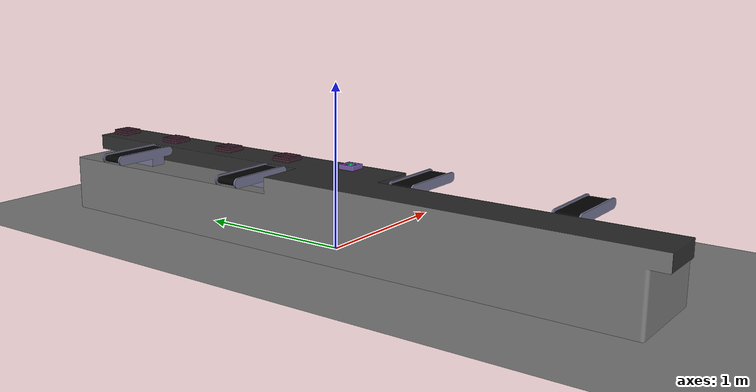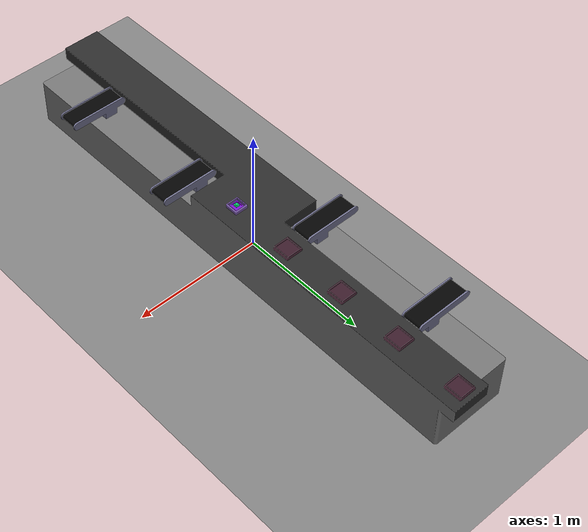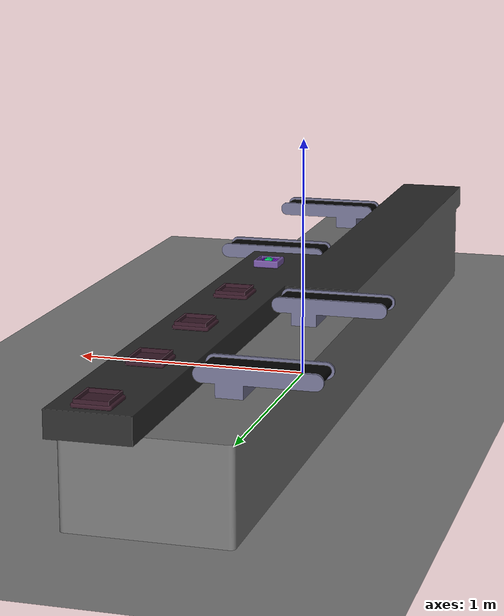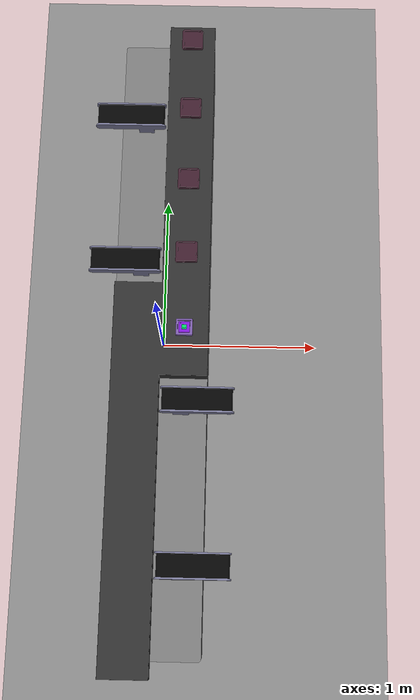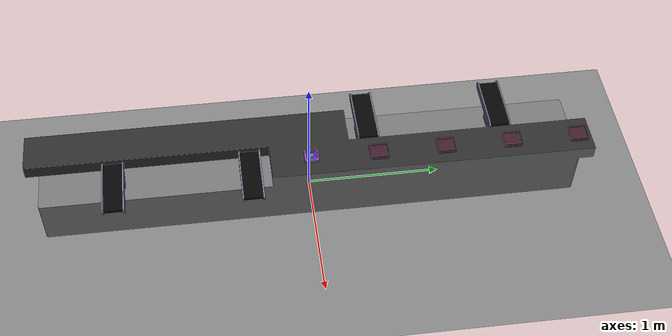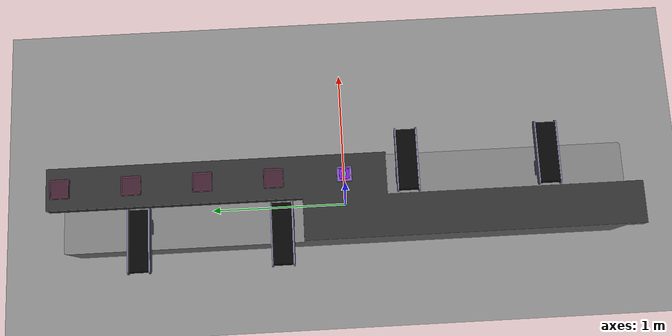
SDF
<?xml version="1.0" ?>
<!-- |    This document was autogenerated by xacro from /home/hao/vaccam_platform_ws/src/nova_gazebo/worlds/my_world.sdf.xacro | -->
<!-- |    EDITING THIS FILE BY HAND IS NOT RECOMMENDED                                 | -->
<sdf version="1.7">
  <world name="empty_world">
    <physics name='1ms' type='ignored'>
      <max_step_size>0.001</max_step_size>
      <real_time_factor>1</real_time_factor>
      <real_time_update_rate>1000</real_time_update_rate>
    </physics>
    <plugin name='gz::sim::systems::Physics' filename='gz-sim-physics-system'/>
    <plugin name='gz::sim::systems::UserCommands' filename='gz-sim-user-commands-system'/>
    <plugin name='gz::sim::systems::SceneBroadcaster' filename='gz-sim-scene-broadcaster-system'/>
    <plugin
      filename="gz-sim-velocity-control-system"
      name="gz::sim::systems::VelocityControl">
    </plugin>
    <!-- physics & atmosphere -->
    <gravity>0 0 -9.81</gravity>
    <!-- lighting -->
    <light name="sun" type="directional">
      <pose>0 0 10 0 0 0</pose>
      <diffuse>1 1 1 1</diffuse>
      <specular>0.1 0.1 0.1 1</specular>
      <attenuation>
        <range>1000</range>
        <constant>0.9</constant>
        <linear>0.01</linear>
        <quadratic>0.001</quadratic>
      </attenuation>
      <direction>0.0 0.0 -1</direction>
      <cast_shadows>true</cast_shadows>
    </light>
    <!-- simple ground plane -->
    <model name="ground_plane">
      <static>true</static>
      <link name="link">
        <collision name="collision">
          <geometry>
            <plane>
              <normal>0 0 1</normal>
              <size>10 10</size>
            </plane>
          </geometry>
        </collision>
        <visual name="visual">
          <geometry>
            <plane>
              <normal>0 0 1</normal>
              <size>10 10</size>
            </plane>
          </geometry>
          <material>
            <ambient>0.5 0.8 0.8 1</ambient>
            <diffuse>0.5 0.5 0.5 1</diffuse>
          </material>
        </visual>
      </link>
    </model>
    <include>
      <name>container_l</name>
      <uri>model://container_l</uri>
      <pose>0.15 0 0.45999999999999996 0 0 0</pose>
      <static>False</static>
    </include>
    <!-- ======= World Definition ======= -->
    <include>
      <name>container_m</name>
      <uri>model://container_m</uri>
      <pose>0.15 0 0.47 0 0 0</pose>
      <static>False</static>
    </include>
    <!-- ======= World Definition ======= -->
    <include>
      <name>object</name>
      <uri>model://object</uri>
      <pose>0.15 0 0.48 0 0 0</pose>
      <static>False</static>
    </include>
    <!-- ======= World Definition ======= -->
    <include>
      <name>conveyor_1</name>
      <uri>model://conveyor</uri>
      <pose>-0.14 1.45 0.35 0 0 0.0</pose>
      <static>True</static>
    </include>
    <!-- ======= World Definition ======= -->
    <include>
      <name>conveyor_2</name>
      <uri>model://conveyor</uri>
      <pose>-0.14 0.45 0.35 0 0 0.0</pose>
      <static>True</static>
    </include>
    <!-- ======= World Definition ======= -->
    <include>
      <name>conveyor_3</name>
      <uri>model://conveyor</uri>
      <pose>0.14 -0.45 0.35 0 0 3.14</pose>
      <static>True</static>
    </include>
    <!-- ======= World Definition ======= -->
    <include>
      <name>conveyor_4</name>
      <uri>model://conveyor</uri>
      <pose>0.14 -1.45 0.35 0 0 3.14</pose>
      <static>True</static>
    </include>
    <!-- ======= World Definition ======= -->
    <include>
      <name>sliding_cube0</name>
      <uri>model://sliding_cube</uri>
      <pose>0.15 0.5 0.450000016 0 0 0</pose>
      <static>False</static>
    </include>

    <include>
      <name>sliding_cube1</name>
      <uri>model://sliding_cube</uri>
      <pose>0.15 1.0 0.4500000 0 0 0</pose>
      <static>False</static>
    </include>
    <include>
    <name>sliding_cube2</name>
      <uri>model://sliding_cube</uri>
      <pose>0.15 1.5 0.4500000 0 0 0</pose>
      <static>False</static>
    </include>
    <include>
      <name>sliding_cube3</name>
      <uri>model://sliding_cube</uri>
      <pose>0.15 2.0 0.4500000 0 0 0</pose>
      <static>False</static>
    </include>
    <!-- ======= World Definition ======= -->
    <include>
      <name>platform</name>
      <uri>model://platform</uri>
      <pose>0 -0.0 0.45 0 0 0</pose>
      <static>True</static>
    </include>
    <!-- ======= World Definition ======= -->
  </world>
</sdf>

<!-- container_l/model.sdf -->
<sdf version="1.6">
  <model name="container_l">
    <static>false</static>

    <link name="link_container_l">
      <inertial>
        <mass>0.185</mass>
        <pose>0 0 0.011014 0 0 0</pose>
        <inertia>
          <ixx>2.24613e-4</ixx>
          <iyy>2.24613e-4</iyy>
          <izz>4.23503e-4</izz>
          <ixy>0</ixy>
          <ixz>0</ixz>
          <iyz>0</iyz>
        </inertia>
      </inertial>

      <collision name="collision">
        <geometry>
          <mesh>
            <uri>model://container_l/meshes/container_l.dae</uri>
          </mesh>
        </geometry>
      </collision>

      <visual name="visual">
        <geometry>
          <mesh>
            <uri>model://container_l/meshes/container_l.dae</uri>
          </mesh>
        </geometry>
      </visual>
    </link>
  </model>
</sdf>

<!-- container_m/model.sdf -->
<sdf version="1.6">
  <model name="container_m">
    <pose>0 0 1 0 0 0</pose>
    <static>false</static>

    <link name="link_container_m">
      <inertial>
        <mass>0.059</mass>
        <pose>0 0 0.006419 0 0 0</pose>
        <inertia>
          <ixx>2.6257e-5</ixx>
          <iyy>2.6257e-5</iyy>
          <izz>5.0783e-5</izz>
          <ixy>0.0</ixy>
          <ixz>0.0</ixz>
          <iyz>0.0</iyz>
        </inertia>
      </inertial>

      <!-- 注意尺寸单位已改为米 -->
      <collision name="collision">
        <geometry>
          <mesh>
            <uri>model://container_m/meshes/container_m.dae</uri>
          </mesh>
        </geometry>
      </collision>

      <visual name="visual">
        <geometry>
          <mesh>
            <uri>model://container_m/meshes/container_m.dae</uri>
          </mesh>
        </geometry>
      </visual>
    </link>
  </model>
</sdf>

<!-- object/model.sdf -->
<sdf version="1.6">
  <model name="object">
    <pose>0 0 1 0 0 0</pose>
    <static>false</static>

    <link name="link_object">
      <inertial>
        <mass>0.01</mass>
        <pose>0 0 0.006127 0 0 0</pose>
        <inertia>
          <ixx>7.95e-7</ixx>
          <iyy>7.95e-7</iyy>
          <izz>1.303e-6</izz>
          <ixy>0</ixy><ixz>0</ixz><iyz>0</iyz>
        </inertia>
      </inertial>

      <collision name="collision">
        <geometry>
          <mesh>
            <uri>model://object/meshes/object.dae</uri>
          </mesh>
        </geometry>
      </collision>

      <visual name="visual">
        <geometry>
          <mesh>
            <uri>model://object/meshes/object.dae</uri>
          </mesh>
        </geometry>
      </visual>
    </link>
  </model>
</sdf>

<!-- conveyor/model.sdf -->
<sdf version="1.6">
  <model name="conveyor">
    <static>true</static>
    <link name="link">
    <collision name="collision">
        <geometry>
          <mesh>
            <uri>model://conveyor/meshes/conveyor.dae</uri>
          </mesh>
        </geometry>
      </collision>
      <visual name="visual">
        <geometry>
          <mesh>
            <uri>model://conveyor/meshes/conveyor.dae</uri>
          </mesh>
        </geometry>
      </visual>
    </link>
  </model>
</sdf>

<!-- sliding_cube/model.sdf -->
<sdf version="1.6" xmlns:xacro="http://ros.org/wiki/xacro">

  <!-- 定义一个变量 name，默认值为 sliding_cube -->
  <xacro:property name="name" value="sliding_cube"/>

  <model name="${name}">
    <pose>0 0 0 0 0 0</pose>
    <static>false</static>

    <!-- 负载方块本体 -->
    <link name="link">
      <inertial>
        <mass>0.329</mass>
        <pose>0 0 0.009172 0 0 0</pose>
        <inertia>
          <ixx>5.7268e-4</ixx>
          <iyy>5.6166e-4</iyy>
          <izz>1.1076e-3</izz>
          <ixy>0</ixy><ixz>0</ixz><iyz>0</iyz>
        </inertia>
      </inertial>

      <collision name="collision">
        <geometry>
          <mesh>
            <uri>model://sliding_cube/meshes/sliding_cube.dae</uri>
          </mesh>
        </geometry>
      </collision>

      <visual name="visual">
        <geometry>
          <mesh>
            <uri>model://sliding_cube/meshes/sliding_cube.dae</uri>
          </mesh>
        </geometry>
      </visual>
    </link>

    <!-- 用 xacro 变量拼 topic -->
    <plugin
      filename="gz-sim-velocity-control-system"
      name="gz::sim::systems::VelocityControl">
      <initial_linear>0 0 0</initial_linear>
      <initial_angular>0 0 0</initial_angular>
    </plugin>
      <plugin
        filename="gz-sim-pose-publisher-system"
        name="gz::sim::systems::PosePublisher">
        <publish_link_pose>false</publish_link_pose>
        <publish_collision_pose>false</publish_collision_pose>
        <publish_visual_pose>false</publish_visual_pose>
        <publish_nested_model_pose>true</publish_nested_model_pose>
      </plugin>
  </model>
</sdf>

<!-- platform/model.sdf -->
<sdf version="1.6">
  <model name="platform">
    <pose>0 0 1 0 0 0</pose>
    <static>true</static>
    <link name="link">
      <collision name="collision">
        <geometry>
          <mesh>
            <uri>model://platform/meshes/platform.dae</uri>
          </mesh>
        </geometry>
      </collision>

      <visual name="visual">
        <geometry>
          <mesh>
            <uri>model://platform/meshes/platform.dae</uri>
          </mesh>
        </geometry>
      </visual>
    </link>
  </model>
</sdf>
